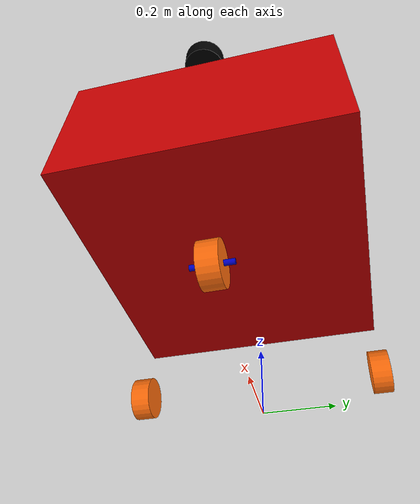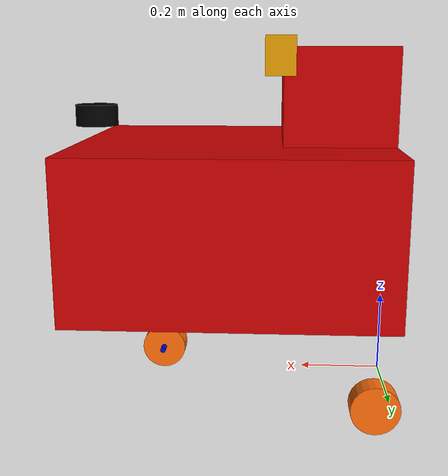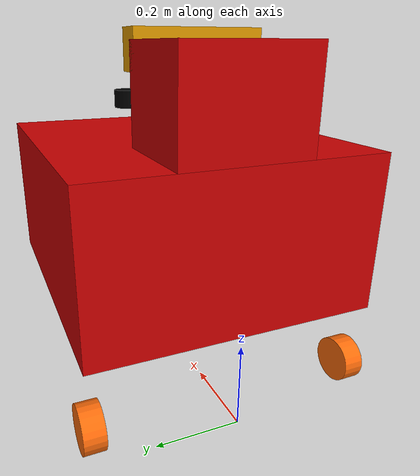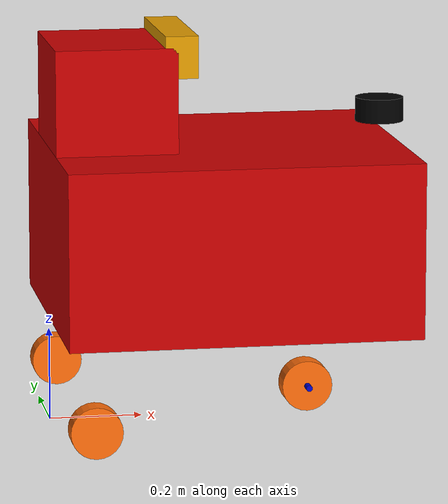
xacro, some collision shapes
<?xml version="1.0"?>
<robot xmlns:xacro="http://www.ros.org/wiki/xacro" name="tricycle" >

  <!-- Import Rviz colors -->
  <xacro:include filename="$(find mycar)/urdf/materials.xacro" />

  <!-- Import robot  -->
  <xacro:include filename="$(find mycar)/urdf/xacro_gazebo/car/tricycle_body.xacro"/>
  <xacro:include filename="$(find mycar)/urdf/xacro_gazebo/sensors/lidar_gazebo.xacro"/>
  <xacro:include filename="$(find mycar)/urdf/xacro_gazebo/sensors/kinect_gazebo.xacro"/>

  <xacro:property name="lidar_offset_x" value="${0.75-0.04479+0.01679}" />
  <xacro:property name="lidar_offset_y" value="0" />
  <xacro:property name="lidar_offset_z" value="${0.06+0.6}" />

  <xacro:property name="camera_offset_x" value="${0.26+0.0075}" />
  <xacro:property name="camera_offset_y" value="0" />
  <xacro:property name="camera_offset_z" value="${0.825-0.02}" />

  <xacro:tricycle_body parent="base_link" meshes="package://gazebo_plugins/test/tricycle_drive/meshes/tricycle"/>
    <!-- lidar -->
    <joint name="lidar_joint" type="fixed">
        <origin xyz="${lidar_offset_x} ${lidar_offset_y} ${lidar_offset_z}" rpy="0 0 0" />
        <parent link="base_link"/>
        <child link="laser_link"/>
    </joint>

    <xacro:rplidar prefix="laser"/>

    <!-- rgbd -->
    <joint name="camera_joint" type="fixed">
        <origin xyz="${camera_offset_x} ${camera_offset_y} ${camera_offset_z}" rpy="0 0 0" />
        <parent link="base_link"/>
        <child link="camera_link"/>
    </joint>

    <xacro:kinect_camera prefix="camera"/>

</robot>

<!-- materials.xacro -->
<robot>

  <material name="black">
    <color rgba="0.0 0.0 0.0 1.0"/>
  </material>

  <material name="blue">
    <color rgba="0.0 0.0 0.8 1.0"/>
  </material>

  <material name="green">
    <color rgba="0.0 0.8 0.0 1.0"/>
  </material>

  <material name="grey">
    <color rgba="0.2 0.2 0.2 1.0"/>
  </material>

  <material name="orange">
    <color rgba="${255/255} ${108/255} ${10/255} 1.0"/>
  </material>

  <material name="brown">
    <color rgba="${222/255} ${207/255} ${195/255} 1.0"/>
  </material>

  <material name="red">
    <color rgba="0.8 0.0 0.0 1.0"/>
  </material>

  <material name="white">
    <color rgba="1.0 1.0 1.0 1.0"/>
  </material>

</robot>

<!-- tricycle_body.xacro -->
<robot xmlns:xacro="http://www.ros.org/wiki/xacro">
  <xacro:property name="M_PI" value="3.1415926535897931" />
  <xacro:property name="radius_actuated_wheel" value="0.055" />
  <xacro:property name="radius_encoder_wheel" value="0.055" />

  <xacro:property name="DX" value="0.75" />
  <xacro:property name="DY" value="0.69" />
  <xacro:property name="DZ" value="0.375" />

  <xacro:property name="DX2" value="0.26" />
  <xacro:property name="DY2" value="0.30" />
  <xacro:property name="DZ2" value="0.225" />

  <xacro:include filename="$(find mycar)/urdf/xacro_gazebo/car/inertia_tensors.xacro"/>
  <xacro:include filename="$(find mycar)/urdf/xacro_gazebo/car/tricycle_chassis.xacro"/>
  <xacro:include filename="$(find mycar)/urdf/xacro_gazebo/car/wheel.xacro"/>
  <xacro:include filename="$(find mycar)/urdf/xacro_gazebo/car/wheel_actuated.xacro"/>
  <xacro:include filename="$(find mycar)/urdf/xacro_gazebo/car/tricycle_plugins.xacro"/>

  <xacro:macro name="tricycle_body" params="parent meshes">

    <!-- base_link -->
    <link name="${parent}"/>

    <!-- Chassis -->
    <xacro:tricycle_chassis name="chassis" parent="${parent}" xyz="${DX/2} 0 ${DZ/2+0.225}" rpy="0 0 0"  meshes="${meshes}" DX="${DX}" DY="${DY}" DZ="${DZ}"/>
    <xacro:tricycle_chassis name="chassis2" parent="${parent}" xyz="${DX2/2} 0 0.7125" rpy="0 0 0"  meshes="${meshes}" DX="${DX2}" DY="${DY2}" DZ="${DZ2}"/>
    <!-- Wheels  -->
    <xacro:wheel name="left"   parent="${parent}"  xyz="${radius_encoder_wheel}   ${0.69/2-0.03/2} ${radius_encoder_wheel}" rpy="${-M_PI/2} 0 0" radius="${radius_encoder_wheel}" length="0.05" meshes="${meshes}"/>
    <xacro:wheel name="right"    parent="${parent}"  xyz="${radius_encoder_wheel}  ${-0.69/2+0.03/2} ${radius_encoder_wheel}" rpy="${-M_PI/2} 0 0" radius="${radius_encoder_wheel}" length="0.05" meshes="${meshes}"/>
    <xacro:wheel_actuated name="front"  parent="${parent}"  xyz="${0.75*3/4}  0.0   ${radius_actuated_wheel}" rpy="${-M_PI/2} 0 0" radius="${radius_actuated_wheel}" length="0.05" meshes="${meshes}"/>

    <!-- Motor plugin -->
    <xacro:tricycle_drive />

  </xacro:macro>
</robot>

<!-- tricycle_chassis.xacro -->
<robot xmlns:xacro="http://ros.org/wiki/xacro">
  <xacro:property name="M_PI" value="3.1415926535897931" />

  <xacro:macro name="tricycle_chassis" params="name parent xyz rpy meshes DX DY DZ">

  <!-- Chassis -->
  <joint name="${parent}_${name}_joint" type="fixed">
    <origin xyz="${xyz}" rpy="${rpy}"/>
    <parent link="${parent}"/>
    <child link="${name}"/>
  </joint>
  <link name="${name}">
    <visual name="${name}_visual">
      <geometry name="${name}_geometry">
        <box size="${DX} ${DY} ${DZ}"/>
      </geometry>
      <material name="red"/>
    </visual>
    <collision>
      <geometry>
        <box size="${DX} ${DY} ${DZ}"/>
      </geometry>
    </collision>
    <xacro:box_inertial x="${DX}" y="${DY}"  z="${DZ}" mass="50.0"/>
  </link>

  <gazebo reference="${name}">
    <material value="Gazebo/Blue"/>
  </gazebo>

  </xacro:macro>

</robot>

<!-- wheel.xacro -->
<robot
  xmlns:xacro="http://ros.org/wiki/xacro">
  <xacro:property name="M_PI" value="3.1415926535897931" />

  <xacro:macro name="wheel" params="name parent xyz rpy radius length meshes">

  <!-- Wheel -->
  <joint name="${name}_wheel_joint" type="continuous">
    <origin xyz="${xyz}" rpy="${rpy}"/>
    <parent link="${parent}"/>
    <child link="${name}_wheel"/>
    <axis xyz="0 0 1"/>
    <anchor xyz="0 0 0"/>
    <limit effort="100" velocity="100" k_velocity="0"/>
    <joint_properties damping="0.0" friction="0.0"/>
  </joint>
  <link name="${name}_wheel">
    <visual name="${name}_wheel_visual">
      <origin xyz="0 0 0" rpy="0 0 0"/>
      <geometry name="{name}_wheel_geometry">
        <cylinder radius="${radius}" length="${length}"/>
      </geometry>
      <material name="orange"/>
    </visual>
    <collision>
      <origin xyz="0 0 0" rpy="0 0 0"/>
      <geometry>
        <cylinder radius="${radius}" length="${length}"/>
      </geometry>
    </collision>
    <xacro:cylinder_inertial radius="${radius}" length="${length}" mass="2.0" />
  </link>
  <gazebo reference="${name}_wheel">
    <material value="Gazebo/Wood"/>
  </gazebo>

  </xacro:macro>

</robot>

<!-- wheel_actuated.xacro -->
<robot xmlns:xacro="http://ros.org/wiki/xacro">
  <xacro:property name="M_PI" value="3.1415926535897931" />

  <xacro:macro name="wheel_actuated" params="name parent xyz rpy radius length meshes">

  <!-- steering joint -->
  <joint name="${name}_steering_joint" type="continuous">
    <origin xyz="${xyz}" rpy="${rpy}"/>
    <parent link="${parent}"/>
    <child link="${name}_steering"/>
    <axis xyz="0 1 0"/>
    <anchor xyz="0 0 0"/>
    <limit effort="100" velocity="100" k_velocity="0"/>
    <joint_properties damping="0.0" friction="0.0"/>
  </joint>
  <link name="${name}_steering">
    <visual name="${name}_visual">
      <origin xyz="0 0 0" rpy="0 0 0"/>
      <geometry name="${name}_geometry">
        <cylinder radius="${radius / 8.0}" length="${length * 2}"/>
      </geometry>
      <material name="blue"/>
    </visual>
    <xacro:cylinder_inertial radius="${radius / 8.0}" length="${length* 2}" mass="2.0" />
  </link>
  <gazebo reference="${name}_steering">
    <material value="Gazebo/Blue"/>
  </gazebo>

  <!-- wheel joint -->
  <xacro:wheel name="${name}"  parent="${name}_steering"  xyz="0 0 0" rpy="0 0 0" radius="${radius}" length="${length}" meshes="${meshes}"/>

  </xacro:macro>

</robot>

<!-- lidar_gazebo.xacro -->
<robot xmlns:xacro="http://www.ros.org/wiki/xacro" name="laser">

    <xacro:macro name="rplidar" params="prefix:=laser">
        <!-- Create laser reference frame -->
        <link name="${prefix}_link">
            <inertial>
                <mass value="0.1" />
                <origin xyz="0 0 0" />
                <inertia ixx="0.01" ixy="0.0" ixz="0.0"
                         iyy="0.01" iyz="0.0"
                         izz="0.01" />
            </inertial>

            <visual>
                <origin xyz=" 0 0 0 " rpy="0 0 0" />
                <geometry>
                    <cylinder length="0.052" radius="0.052"/>
                </geometry>
                <material name="black"/>
            </visual>

            <collision>
                <origin xyz="0.0 0.0 0.0" rpy="0 0 0" />
                <geometry>
                    <cylinder length="0.06" radius="0.05"/>
                </geometry>
            </collision>
        </link>
        <gazebo reference="${prefix}_link">
            <material>Gazebo/Black</material>
        </gazebo>

        <gazebo reference="${prefix}_link">
            <sensor type="gpu_ray" name="head_hokuyo_sensor">
                <pose>0 0 0 0 0 0</pose>
                <visualize>false</visualize>
                <update_rate>5.5</update_rate>
                <ray>
                    <scan>
                      <horizontal>
                        <samples>270</samples>
                        <resolution>1</resolution>
                        <min_angle>-2.356</min_angle>
                        <max_angle>2.356</max_angle>
                      </horizontal>
                    </scan>
                    <range>
                      <min>0.05</min>
                      <max>10.0</max>
                      <resolution>0.01</resolution>
                    </range>
                    <noise>
                      <type>gaussian</type>
                      <mean>0.0</mean>
                      <stddev>0</stddev>
                    </noise>
                </ray>
                <plugin name="gazebo_ros_head_hokuyo_controller" filename="libgazebo_ros_gpu_laser.so">
                    <topicName>/scan</topicName>
                    <frameName>laser_link</frameName>
                </plugin>
            </sensor>
        </gazebo>

    </xacro:macro>
</robot>

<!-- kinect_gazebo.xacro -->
<robot xmlns:xacro="http://www.ros.org/wiki/xacro" name="kinect_camera">

    <xacro:macro name="kinect_camera" params="prefix:=camera">
        <!-- Create kinect reference frame -->
        <!-- Add mesh for kinect -->
        <link name="${prefix}_link">
            <origin xyz="0 0 0" rpy="0 0 0"/>
            <visual>
                <origin xyz="0 0 0" rpy="0 0 ${M_PI/2}"/>
                <geometry>
                    <mesh filename="package://mycar/urdf/xacro_gazebo/sensors/meshes/kinect.dae" />
                </geometry>
            </visual>
            <collision>
                <geometry>
                    <box size="0.07 0.3 0.09"/>
                </geometry>
            </collision>
        </link>

        <joint name="${prefix}_optical_joint" type="fixed">
            <origin xyz="0 0 0" rpy="-1.5708 0 -1.5708"/>
            <parent link="${prefix}_link"/>
            <child link="${prefix}_frame_optical"/>
        </joint>

        <link name="${prefix}_frame_optical"/>

        <gazebo reference="${prefix}_link">
            <sensor type="depth" name="${prefix}">
                <always_on>true</always_on>
                <update_rate>20.0</update_rate>
                <camera>
                    <horizontal_fov>${91.2*M_PI/180.0}</horizontal_fov>
                    <image>
                        <format>R8G8B8</format>
                        <width>640</width>
                        <height>480</height>
                    </image>
                    <clip>
                        <near>0.02</near>
                        <far>8.0</far>
                    </clip>
                </camera>
                <plugin name="kinect_${prefix}_controller" filename="libgazebo_ros_openni_kinect.so">
                    <cameraName>${prefix}</cameraName>
                    <alwaysOn>true</alwaysOn>
                    <updateRate>10</updateRate>
                    <imageTopicName>rgb/image_raw</imageTopicName>
                    <depthImageTopicName>depth/image_raw</depthImageTopicName>
                    <pointCloudTopicName>depth/points</pointCloudTopicName>
                    <cameraInfoTopicName>rgb/camera_info</cameraInfoTopicName>
                    <depthImageCameraInfoTopicName>depth/camera_info</depthImageCameraInfoTopicName>
                    <frameName>${prefix}_frame_optical</frameName>
                    <baseline>0.1</baseline>
                    <distortion_k1>0.0</distortion_k1>
                    <distortion_k2>0.0</distortion_k2>
                    <distortion_k3>0.0</distortion_k3>
                    <distortion_t1>0.0</distortion_t1>
                    <distortion_t2>0.0</distortion_t2>
                    <pointCloudCutoff>0.4</pointCloudCutoff>
                </plugin>
            </sensor>
        </gazebo>

    </xacro:macro>
</robot>
